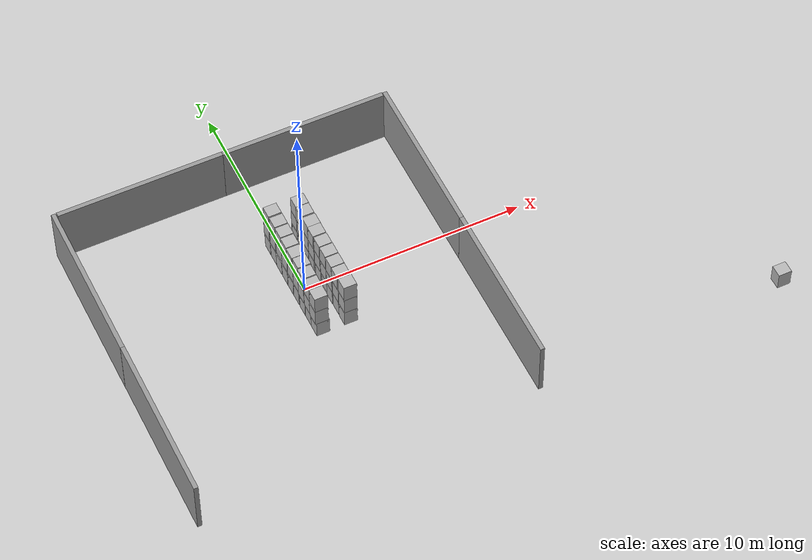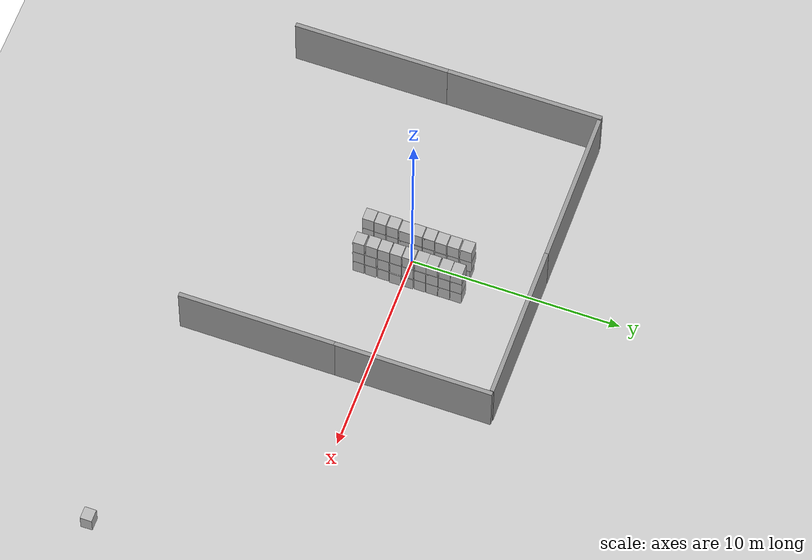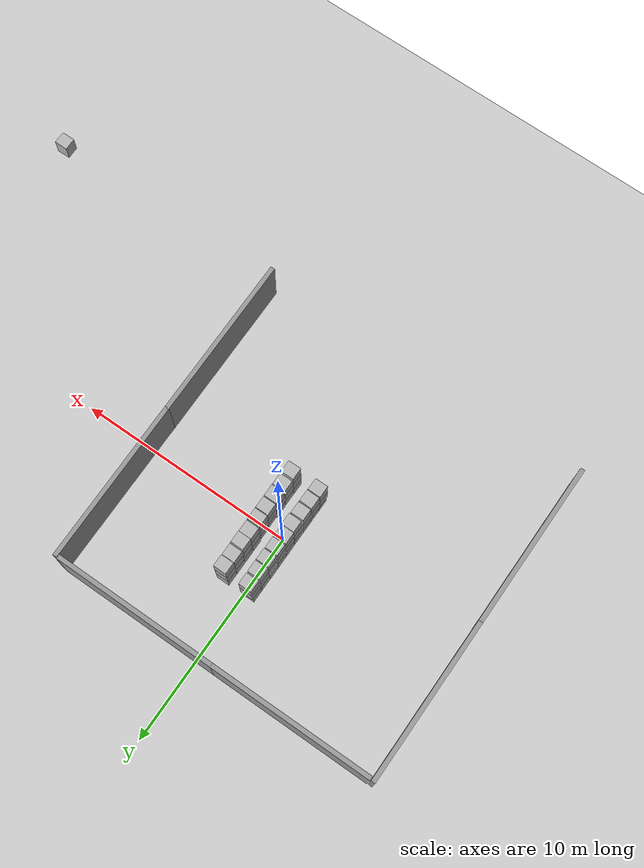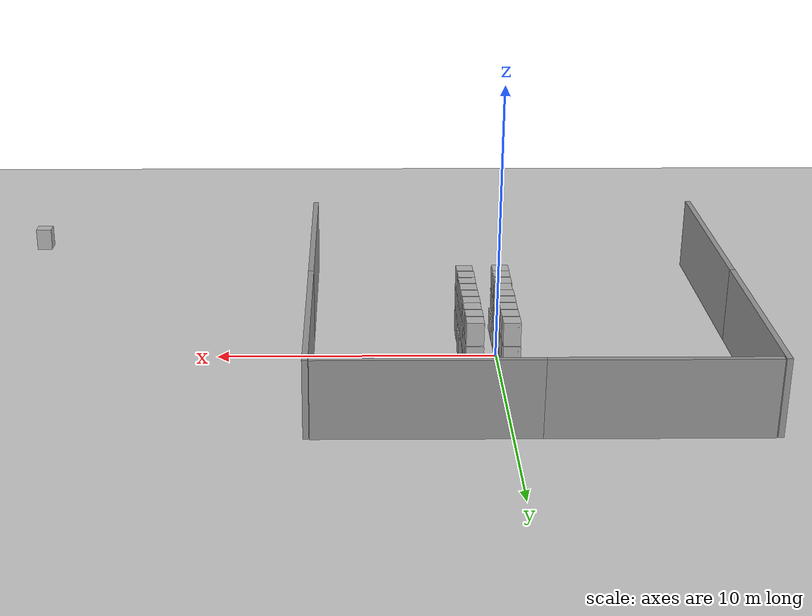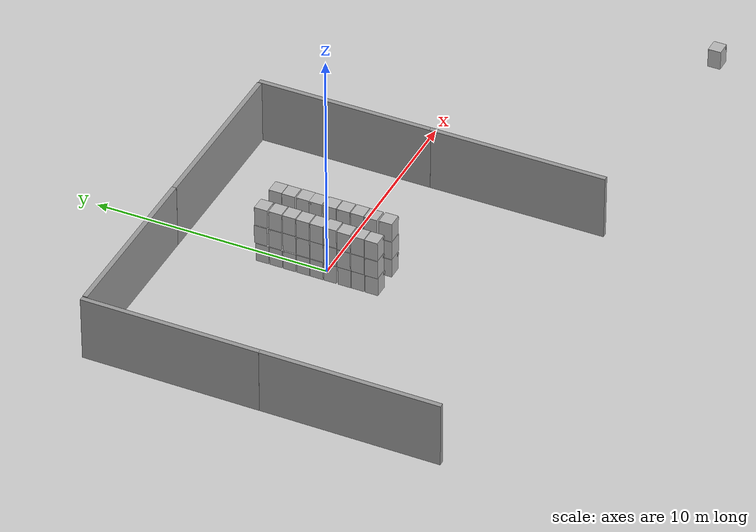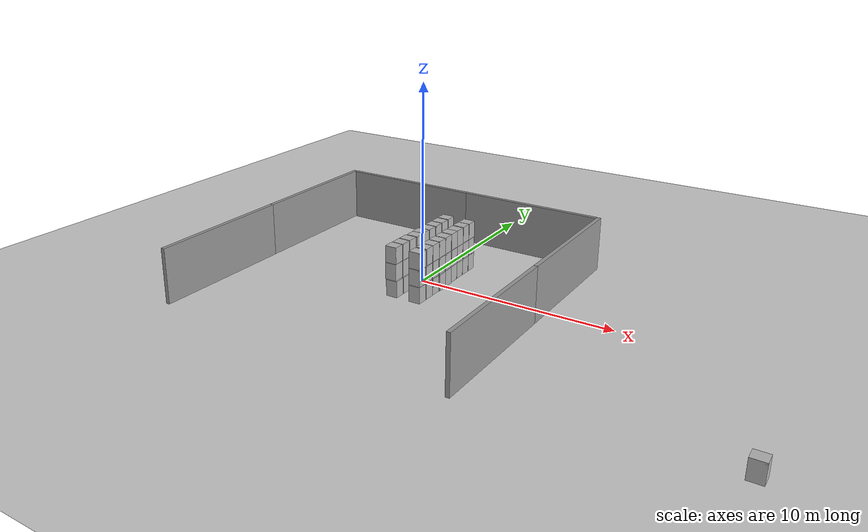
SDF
<sdf version="1.7">
 <world name="default">
  <light name="sun" type="directional">
   <pose>0 0 10 0 -0 0</pose>
   <diffuse>0.8 0.8 0.8 1</diffuse>
   <specular>0.2 0.2 0.2 1</specular>
   <attenuation>
    <range>1000</range>
    <constant>0.9</constant>
    <linear>0.01</linear>
    <quadratic>0.001</quadratic>
   </attenuation>
   <direction>-0.5 0.1 -0.9</direction>
   <spot><inner_angle>0</inner_angle><outer_angle>0</outer_angle><falloff>0</falloff></spot>
  </light>
  <model name="ground_plane">
   <static>1</static>
   <link name="link">
    <collision name="collision">
     <geometry><plane><normal>0 0 1</normal><size>100 100</size></plane></geometry>
     <surface>
      <contact><collide_bitmask>65535</collide_bitmask></contact>
      <friction><ode><mu>100</mu><mu2>50</mu2></ode></friction>
     </surface>
    </collision>
    <visual name="visual">
     <cast_shadows>0</cast_shadows>
     <geometry><plane><normal>0 0 1</normal><size>100 100</size></plane></geometry>
     <material>
      <script><uri>file://media/materials/scripts/gazebo.material</uri><name>Gazebo/Grey</name></script>
     </material>
    </visual>
   </link>
  </model>
  <gravity>0 0 -9.8</gravity>
  <magnetic_field>6e-06 2.3e-05 -4.2e-05</magnetic_field>
  <atmosphere type="adiabatic"/>
  <physics type="ode">
   <max_step_size>0.001</max_step_size>
   <real_time_factor>1</real_time_factor>
   <real_time_update_rate>1000</real_time_update_rate>
  </physics>
  <scene><ambient>0.4 0.4 0.4 1</ambient><background>0.7 0.7 0.7 1</background><shadows>1</shadows></scene>
  <audio><device>default</device></audio>
  <spherical_coordinates>
   <surface_model>EARTH_WGS84</surface_model>
   <latitude_deg>0</latitude_deg>
   <longitude_deg>0</longitude_deg>
   <elevation>0</elevation>
   <heading_deg>0</heading_deg>
  </spherical_coordinates>
  <model name="Arcelik Washing Machine">
   <static>1</static>
   <link name="link">
    <collision name="collision">
     <geometry>
      <mesh>
       <uri>file://src/cloudy/robolaunch_cloudy_simulator/worlds/arcelik_warehouse/washing_machine.dae</uri>
      </mesh>
     </geometry>
    </collision>
    <visual name="visual">
     <geometry>
      <mesh>
       <uri>file://src/cloudy/robolaunch_cloudy_simulator/worlds/arcelik_warehouse/washing_machine.dae</uri>
      </mesh>
     </geometry>
    </visual>
   </link>
   <pose>1.05126 -1.53559 0 0 -0 0</pose>
  </model>
  <model name="Arcelik Washing Machine_0">
   <static>1</static>
   <link name="link">
    <collision name="collision">
     <geometry>
      <mesh>
       <uri>file://src/cloudy/robolaunch_cloudy_simulator/worlds/arcelik_warehouse/washing_machine.dae</uri>
      </mesh>
     </geometry>
    </collision>
    <visual name="visual">
     <geometry>
      <mesh>
       <uri>file://src/cloudy/robolaunch_cloudy_simulator/worlds/arcelik_warehouse/washing_machine.dae</uri>
      </mesh>
     </geometry>
    </visual>
   </link>
   <pose>1.04174 -0.933475 0 0 -0 0</pose>
  </model>
  <model name="Arcelik Washing Machine_0_clone">
   <static>1</static>
   <link name="link">
    <collision name="collision">
     <geometry>
      <mesh>
       <uri>file://src/cloudy/robolaunch_cloudy_simulator/worlds/arcelik_warehouse/washing_machine.dae</uri>
      </mesh>
     </geometry>
    </collision>
    <visual name="visual">
     <geometry>
      <mesh>
       <uri>file://src/cloudy/robolaunch_cloudy_simulator/worlds/arcelik_warehouse/washing_machine.dae</uri>
      </mesh>
     </geometry>
    </visual>
   </link>
   <pose>1.07736 -0.342189 0 0 -0 0</pose>
  </model>
  <model name="Arcelik Washing Machine_0_clone_clone">
   <static>1</static>
   <link name="link">
    <collision name="collision">
     <geometry>
      <mesh>
       <uri>file://src/cloudy/robolaunch_cloudy_simulator/worlds/arcelik_warehouse/washing_machine.dae</uri>
      </mesh>
     </geometry>
    </collision>
    <visual name="visual">
     <geometry>
      <mesh>
       <uri>file://src/cloudy/robolaunch_cloudy_simulator/worlds/arcelik_warehouse/washing_machine.dae</uri>
      </mesh>
     </geometry>
    </visual>
   </link>
   <pose>1.05767 0.240598 0 0 -0 0</pose>
  </model>
  <model name="Arcelik Washing Machine_0_clone_clone_clone">
   <static>1</static>
   <link name="link">
    <collision name="collision">
     <geometry>
      <mesh>
       <uri>file://src/cloudy/robolaunch_cloudy_simulator/worlds/arcelik_warehouse/washing_machine.dae</uri>
      </mesh>
     </geometry>
    </collision>
    <visual name="visual">
     <geometry>
      <mesh>
       <uri>file://src/cloudy/robolaunch_cloudy_simulator/worlds/arcelik_warehouse/washing_machine.dae</uri>
      </mesh>
     </geometry>
    </visual>
   </link>
   <pose>1.02267 0.832197 0 0 -0 0</pose>
  </model>
  <model name="Arcelik Washing Machine_0_clone_clone_clone_0">
   <static>1</static>
   <link name="link">
    <collision name="collision">
     <geometry>
      <mesh>
       <uri>file://src/cloudy/robolaunch_cloudy_simulator/worlds/arcelik_warehouse/washing_machine.dae</uri>
      </mesh>
     </geometry>
    </collision>
    <visual name="visual">
     <geometry>
      <mesh>
       <uri>file://src/cloudy/robolaunch_cloudy_simulator/worlds/arcelik_warehouse/washing_machine.dae</uri>
      </mesh>
     </geometry>
    </visual>
   </link>
   <pose>1.01923 1.41064 0 0 -0 0</pose>
  </model>
  <model name="Arcelik Washing Machine_0_clone_clone_clone_1">
   <static>1</static>
   <link name="link">
    <collision name="collision">
     <geometry>
      <mesh>
       <uri>file://src/cloudy/robolaunch_cloudy_simulator/worlds/arcelik_warehouse/washing_machine.dae</uri>
      </mesh>
     </geometry>
    </collision>
    <visual name="visual">
     <geometry>
      <mesh>
       <uri>file://src/cloudy/robolaunch_cloudy_simulator/worlds/arcelik_warehouse/washing_machine.dae</uri>
      </mesh>
     </geometry>
    </visual>
   </link>
   <pose>1.01919 1.986 0 0 -0 0</pose>
  </model>
  <model name="Arcelik Washing Machine_0_clone_clone_clone_2">
   <static>1</static>
   <link name="link">
    <collision name="collision">
     <geometry>
      <mesh>
       <uri>file://src/cloudy/robolaunch_cloudy_simulator/worlds/arcelik_warehouse/washing_machine.dae</uri>
      </mesh>
     </geometry>
    </collision>
    <visual name="visual">
     <geometry>
      <mesh>
       <uri>file://src/cloudy/robolaunch_cloudy_simulator/worlds/arcelik_warehouse/washing_machine.dae</uri>
      </mesh>
     </geometry>
    </visual>
   </link>
   <pose>1.01915 2.56135 0 0 -0 0</pose>
  </model>
  <model name="Arcelik Washing Machine_clone">
   <static>1</static>
   <link name="link">
    <collision name="collision">
     <geometry>
      <mesh>
       <uri>file://src/cloudy/robolaunch_cloudy_simulator/worlds/arcelik_warehouse/washing_machine.dae</uri>
      </mesh>
     </geometry>
    </collision>
    <visual name="visual">
     <geometry>
      <mesh>
       <uri>file://src/cloudy/robolaunch_cloudy_simulator/worlds/arcelik_warehouse/washing_machine.dae</uri>
      </mesh>
     </geometry>
    </visual>
   </link>
   <pose>1.04548 -2.12786 0 0 -0 0</pose>
  </model>
  <model name="Arcelik Washing Machine_clone_clone">
   <static>1</static>
   <link name="link">
    <collision name="collision">
     <geometry>
      <mesh>
       <uri>file://src/cloudy/robolaunch_cloudy_simulator/worlds/arcelik_warehouse/washing_machine.dae</uri>
      </mesh>
     </geometry>
    </collision>
    <visual name="visual">
     <geometry>
      <mesh>
       <uri>file://src/cloudy/robolaunch_cloudy_simulator/worlds/arcelik_warehouse/washing_machine.dae</uri>
      </mesh>
     </geometry>
    </visual>
   </link>
   <pose>1.03434 -0.934238 0.861747 0 -0 0</pose>
  </model>
  <model name="Arcelik Washing Machine_clone_clone_0">
   <static>1</static>
   <link name="link">
    <collision name="collision">
     <geometry>
      <mesh>
       <uri>file://src/cloudy/robolaunch_cloudy_simulator/worlds/arcelik_warehouse/washing_machine.dae</uri>
      </mesh>
     </geometry>
    </collision>
    <visual name="visual">
     <geometry>
      <mesh>
       <uri>file://src/cloudy/robolaunch_cloudy_simulator/worlds/arcelik_warehouse/washing_machine.dae</uri>
      </mesh>
     </geometry>
    </visual>
   </link>
   <pose>1.04119 -0.341257 0.861747 0 -0 0</pose>
  </model>
  <model name="Arcelik Washing Machine_clone_clone_1">
   <static>1</static>
   <link name="link">
    <collision name="collision">
     <geometry>
      <mesh>
       <uri>file://src/cloudy/robolaunch_cloudy_simulator/worlds/arcelik_warehouse/washing_machine.dae</uri>
      </mesh>
     </geometry>
    </collision>
    <visual name="visual">
     <geometry>
      <mesh>
       <uri>file://src/cloudy/robolaunch_cloudy_simulator/worlds/arcelik_warehouse/washing_machine.dae</uri>
      </mesh>
     </geometry>
    </visual>
   </link>
   <pose>1.03196 0.236288 0.861747 0 -0 0</pose>
  </model>
  <model name="Arcelik Washing Machine_clone_clone_2">
   <static>1</static>
   <link name="link">
    <collision name="collision">
     <geometry>
      <mesh>
       <uri>file://src/cloudy/robolaunch_cloudy_simulator/worlds/arcelik_warehouse/washing_machine.dae</uri>
      </mesh>
     </geometry>
    </collision>
    <visual name="visual">
     <geometry>
      <mesh>
       <uri>file://src/cloudy/robolaunch_cloudy_simulator/worlds/arcelik_warehouse/washing_machine.dae</uri>
      </mesh>
     </geometry>
    </visual>
   </link>
   <pose>1.02964 0.831469 0.861747 0 -0 0</pose>
  </model>
  <model name="Arcelik Washing Machine_clone_clone_3">
   <static>1</static>
   <link name="link">
    <collision name="collision">
     <geometry>
      <mesh>
       <uri>file://src/cloudy/robolaunch_cloudy_simulator/worlds/arcelik_warehouse/washing_machine.dae</uri>
      </mesh>
     </geometry>
    </collision>
    <visual name="visual">
     <geometry>
      <mesh>
       <uri>file://src/cloudy/robolaunch_cloudy_simulator/worlds/arcelik_warehouse/washing_machine.dae</uri>
      </mesh>
     </geometry>
    </visual>
   </link>
   <pose>1.02328 1.40521 0.861747 0 -0 0</pose>
  </model>
  <model name="Arcelik Washing Machine_clone_clone_4">
   <static>1</static>
   <link name="link">
    <collision name="collision">
     <geometry>
      <mesh>
       <uri>file://src/cloudy/robolaunch_cloudy_simulator/worlds/arcelik_warehouse/washing_machine.dae</uri>
      </mesh>
     </geometry>
    </collision>
    <visual name="visual">
     <geometry>
      <mesh>
       <uri>file://src/cloudy/robolaunch_cloudy_simulator/worlds/arcelik_warehouse/washing_machine.dae</uri>
      </mesh>
     </geometry>
    </visual>
   </link>
   <pose>1.02783 1.9895 0.861747 0 -0 0</pose>
  </model>
  <model name="Arcelik Washing Machine_clone_clone_5">
   <static>1</static>
   <link name="link">
    <collision name="collision">
     <geometry>
      <mesh>
       <uri>file://src/cloudy/robolaunch_cloudy_simulator/worlds/arcelik_warehouse/washing_machine.dae</uri>
      </mesh>
     </geometry>
    </collision>
    <visual name="visual">
     <geometry>
      <mesh>
       <uri>file://src/cloudy/robolaunch_cloudy_simulator/worlds/arcelik_warehouse/washing_machine.dae</uri>
      </mesh>
     </geometry>
    </visual>
   </link>
   <pose>1.02011 2.56466 0.861747 0 -0 0</pose>
  </model>
  <model name="Arcelik Washing Machine_clone_clone_6">
   <static>1</static>
   <link name="link">
    <collision name="collision">
     <geometry>
      <mesh>
       <uri>file://src/cloudy/robolaunch_cloudy_simulator/worlds/arcelik_warehouse/washing_machine.dae</uri>
      </mesh>
     </geometry>
    </collision>
    <visual name="visual">
     <geometry>
      <mesh>
       <uri>file://src/cloudy/robolaunch_cloudy_simulator/worlds/arcelik_warehouse/washing_machine.dae</uri>
      </mesh>
     </geometry>
    </visual>
   </link>
   <pose>1.04421 -1.55298 0.861747 0 -0 0</pose>
  </model>
  <model name="Arcelik Washing Machine_clone_clone_6_clone">
   <static>1</static>
   <link name="link">
    <collision name="collision">
     <geometry>
      <mesh>
       <uri>file://src/cloudy/robolaunch_cloudy_simulator/worlds/arcelik_warehouse/washing_machine.dae</uri>
      </mesh>
     </geometry>
    </collision>
    <visual name="visual">
     <geometry>
      <mesh>
       <uri>file://src/cloudy/robolaunch_cloudy_simulator/worlds/arcelik_warehouse/washing_machine.dae</uri>
      </mesh>
     </geometry>
    </visual>
   </link>
   <pose>1.01349 1.99846 1.72398 0 -0 0</pose>
  </model>
  <model name="Arcelik Washing Machine_clone_clone_6_clone_0">
   <static>1</static>
   <link name="link">
    <collision name="collision">
     <geometry>
      <mesh>
       <uri>file://src/cloudy/robolaunch_cloudy_simulator/worlds/arcelik_warehouse/washing_machine.dae</uri>
      </mesh>
     </geometry>
    </collision>
    <visual name="visual">
     <geometry>
      <mesh>
       <uri>file://src/cloudy/robolaunch_cloudy_simulator/worlds/arcelik_warehouse/washing_machine.dae</uri>
      </mesh>
     </geometry>
    </visual>
   </link>
   <pose>1.02728 1.38783 1.72398 0 -0 0</pose>
  </model>
  <model name="Arcelik Washing Machine_clone_clone_6_clone_1">
   <static>1</static>
   <link name="link">
    <collision name="collision">
     <geometry>
      <mesh>
       <uri>file://src/cloudy/robolaunch_cloudy_simulator/worlds/arcelik_warehouse/washing_machine.dae</uri>
      </mesh>
     </geometry>
    </collision>
    <visual name="visual">
     <geometry>
      <mesh>
       <uri>file://src/cloudy/robolaunch_cloudy_simulator/worlds/arcelik_warehouse/washing_machine.dae</uri>
      </mesh>
     </geometry>
    </visual>
   </link>
   <pose>1.01913 0.841337 1.72398 0 -0 0</pose>
  </model>
  <model name="Arcelik Washing Machine_clone_clone_6_clone_2">
   <static>1</static>
   <link name="link">
    <collision name="collision">
     <geometry>
      <mesh>
       <uri>file://src/cloudy/robolaunch_cloudy_simulator/worlds/arcelik_warehouse/washing_machine.dae</uri>
      </mesh>
     </geometry>
    </collision>
    <visual name="visual">
     <geometry>
      <mesh>
       <uri>file://src/cloudy/robolaunch_cloudy_simulator/worlds/arcelik_warehouse/washing_machine.dae</uri>
      </mesh>
     </geometry>
    </visual>
   </link>
   <pose>1.03796 -0.926324 1.72398 0 -0 0</pose>
  </model>
  <model name="Arcelik Washing Machine_clone_clone_6_clone_3">
   <static>1</static>
   <link name="link">
    <collision name="collision">
     <geometry>
      <mesh>
       <uri>file://src/cloudy/robolaunch_cloudy_simulator/worlds/arcelik_warehouse/washing_machine.dae</uri>
      </mesh>
     </geometry>
    </collision>
    <visual name="visual">
     <geometry>
      <mesh>
       <uri>file://src/cloudy/robolaunch_cloudy_simulator/worlds/arcelik_warehouse/washing_machine.dae</uri>
      </mesh>
     </geometry>
    </visual>
   </link>
   <pose>1.02809 0.245173 1.72398 0 -0 0</pose>
  </model>
  <model name="Arcelik Washing Machine_clone_clone_6_clone_4">
   <static>1</static>
   <link name="link">
    <collision name="collision">
     <geometry>
      <mesh>
       <uri>file://src/cloudy/robolaunch_cloudy_simulator/worlds/arcelik_warehouse/washing_machine.dae</uri>
      </mesh>
     </geometry>
    </collision>
    <visual name="visual">
     <geometry>
      <mesh>
       <uri>file://src/cloudy/robolaunch_cloudy_simulator/worlds/arcelik_warehouse/washing_machine.dae</uri>
      </mesh>
     </geometry>
    </visual>
   </link>
   <pose>1.03416 -0.337578 1.72398 0 -0 0</pose>
  </model>
  <model name="Arcelik Washing Machine_clone_clone_6_clone_5">
   <static>1</static>
   <link name="link">
    <collision name="collision">
     <geometry>
      <mesh>
       <uri>file://src/cloudy/robolaunch_cloudy_simulator/worlds/arcelik_warehouse/washing_machine.dae</uri>
      </mesh>
     </geometry>
    </collision>
    <visual name="visual">
     <geometry>
      <mesh>
       <uri>file://src/cloudy/robolaunch_cloudy_simulator/worlds/arcelik_warehouse/washing_machine.dae</uri>
      </mesh>
     </geometry>
    </visual>
   </link>
   <pose>1.02366 2.56359 1.72398 0 -0 0</pose>
  </model>
  <model name="grey_wall">
   <static>1</static>
   <link name="link">
    <pose>0 0 1.4 0 -0 0</pose>
    <collision name="collision"><geometry><box><size>7.5 0.2 2.8</size></box></geometry></collision>
    <visual name="visual">
     <cast_shadows>0</cast_shadows>
     <geometry><box><size>7.5 0.2 2.8</size></box></geometry>
     <material>
      <script>
       <uri>model://grey_wall/materials/scripts</uri>
       <uri>model://grey_wall/materials/textures</uri>
       <name>vrc/grey_wall</name>
      </script>
     </material>
    </visual>
   </link>
   <pose>2.79189 6.08206 0 0 -0 0</pose>
  </model>
  <model name="grey_wall_clone">
   <static>1</static>
   <link name="link">
    <pose>0 0 1.4 0 -0 0</pose>
    <collision name="collision"><geometry><box><size>7.5 0.2 2.8</size></box></geometry></collision>
    <visual name="visual">
     <cast_shadows>0</cast_shadows>
     <geometry><box><size>7.5 0.2 2.8</size></box></geometry>
     <material>
      <script>
       <uri>model://grey_wall/materials/scripts</uri>
       <uri>model://grey_wall/materials/textures</uri>
       <name>vrc/grey_wall</name>
      </script>
     </material>
    </visual>
   </link>
   <pose>-4.70341 6.08409 0 0 -0 0</pose>
  </model>
  <model name="Arcelik Washing Machine_clone_clone_6_clone_6">
   <static>1</static>
   <link name="link">
    <collision name="collision">
     <geometry>
      <mesh>
       <uri>file://src/cloudy/robolaunch_cloudy_simulator/worlds/arcelik_warehouse/washing_machine.dae</uri>
      </mesh>
     </geometry>
    </collision>
    <visual name="visual">
     <geometry>
      <mesh>
       <uri>file://src/cloudy/robolaunch_cloudy_simulator/worlds/arcelik_warehouse/washing_machine.dae</uri>
      </mesh>
     </geometry>
    </visual>
   </link>
   <pose>1.05039 -2.13719 0.861747 0 -0 0</pose>
  </model>
  <model name="Arcelik Washing Machine_clone_clone_6_clone_2_clone">
   <static>1</static>
   <link name="link">
    <collision name="collision">
     <geometry>
      <mesh>
       <uri>file://src/cloudy/robolaunch_cloudy_simulator/worlds/arcelik_warehouse/washing_machine.dae</uri>
      </mesh>
     </geometry>
    </collision>
    <visual name="visual">
     <geometry>
      <mesh>
       <uri>file://src/cloudy/robolaunch_cloudy_simulator/worlds/arcelik_warehouse/washing_machine.dae</uri>
      </mesh>
     </geometry>
    </visual>
   </link>
   <pose>1.03302 -1.50292 1.72398 0 -0 0</pose>
  </model>
  <model name="Arcelik Washing Machine_clone_clone_6_clone_2_clone_0">
   <static>1</static>
   <link name="link">
    <collision name="collision">
     <geometry>
      <mesh>
       <uri>file://src/cloudy/robolaunch_cloudy_simulator/worlds/arcelik_warehouse/washing_machine.dae</uri>
      </mesh>
     </geometry>
    </collision>
    <visual name="visual">
     <geometry>
      <mesh>
       <uri>file://src/cloudy/robolaunch_cloudy_simulator/worlds/arcelik_warehouse/washing_machine.dae</uri>
      </mesh>
     </geometry>
    </visual>
   </link>
   <pose>1.0515 -2.1304 1.72398 0 -0 0</pose>
  </model>
  <model name="grey_wall_clone_0">
   <static>1</static>
   <link name="link">
    <pose>0 0 1.4 0 -0 0</pose>
    <collision name="collision"><geometry><box><size>7.5 0.2 2.8</size></box></geometry></collision>
    <visual name="visual">
     <cast_shadows>0</cast_shadows>
     <geometry><box><size>7.5 0.2 2.8</size></box></geometry>
     <material>
      <script>
       <uri>model://grey_wall/materials/scripts</uri>
       <uri>model://grey_wall/materials/textures</uri>
       <name>vrc/grey_wall</name>
      </script>
     </material>
    </visual>
   </link>
   <pose>-8.59866 2.41211 -0 0 -0 1.57</pose>
  </model>
  <model name="grey_wall_clone_0_clone">
   <static>1</static>
   <link name="link">
    <pose>0 0 1.4 0 -0 0</pose>
    <collision name="collision"><geometry><box><size>7.5 0.2 2.8</size></box></geometry></collision>
    <visual name="visual">
     <cast_shadows>0</cast_shadows>
     <geometry><box><size>7.5 0.2 2.8</size></box></geometry>
     <material>
      <script>
       <uri>model://grey_wall/materials/scripts</uri>
       <uri>model://grey_wall/materials/textures</uri>
       <name>vrc/grey_wall</name>
      </script>
     </material>
    </visual>
   </link>
   <pose>-8.60092 -5.08111 0 0 -0 1.57</pose>
  </model>
  <model name="grey_wall_clone_0_clone_clone">
   <static>1</static>
   <link name="link">
    <pose>0 0 1.4 0 -0 0</pose>
    <collision name="collision"><geometry><box><size>7.5 0.2 2.8</size></box></geometry></collision>
    <visual name="visual">
     <cast_shadows>0</cast_shadows>
     <geometry><box><size>7.5 0.2 2.8</size></box></geometry>
     <material>
      <script>
       <uri>model://grey_wall/materials/scripts</uri>
       <uri>model://grey_wall/materials/textures</uri>
       <name>vrc/grey_wall</name>
      </script>
     </material>
    </visual>
   </link>
   <pose>6.65914 2.3992 0 0 -0 1.57</pose>
  </model>
  <model name="grey_wall_clone_0_clone_clone_clone">
   <static>1</static>
   <link name="link">
    <pose>0 0 1.4 0 -0 0</pose>
    <collision name="collision"><geometry><box><size>7.5 0.2 2.8</size></box></geometry></collision>
    <visual name="visual">
     <cast_shadows>0</cast_shadows>
     <geometry><box><size>7.5 0.2 2.8</size></box></geometry>
     <material>
      <script>
       <uri>model://grey_wall/materials/scripts</uri>
       <uri>model://grey_wall/materials/textures</uri>
       <name>vrc/grey_wall</name>
      </script>
     </material>
    </visual>
   </link>
   <pose>6.65444 -5.044 0 0 -0 1.57</pose>
  </model>
  <model name="Arcelik Washing Machine_clone_clone_6_clone_2_clone_0_clone">
   <static>1</static>
   <link name="link">
    <collision name="collision">
     <geometry>
      <mesh>
       <uri>file://src/cloudy/robolaunch_cloudy_simulator/worlds/arcelik_warehouse/washing_machine.dae</uri>
      </mesh>
     </geometry>
    </collision>
    <visual name="visual">
     <geometry>
      <mesh>
       <uri>file://src/cloudy/robolaunch_cloudy_simulator/worlds/arcelik_warehouse/washing_machine.dae</uri>
      </mesh>
     </geometry>
    </visual>
   </link>
   <pose>-0.268069 -2.13975 1.72398 0 -0 0</pose>
  </model>
  <model name="Arcelik Washing Machine_clone_clone_6_clone_2_clone_clone">
   <static>1</static>
   <link name="link">
    <collision name="collision">
     <geometry>
      <mesh>
       <uri>file://src/cloudy/robolaunch_cloudy_simulator/worlds/arcelik_warehouse/washing_machine.dae</uri>
      </mesh>
     </geometry>
    </collision>
    <visual name="visual">
     <geometry>
      <mesh>
       <uri>file://src/cloudy/robolaunch_cloudy_simulator/worlds/arcelik_warehouse/washing_machine.dae</uri>
      </mesh>
     </geometry>
    </visual>
   </link>
   <pose>-0.257191 -1.56001 1.72398 0 -0 0</pose>
  </model>
  <model name="Arcelik Washing Machine_clone_clone_6_clone_2_clone_1">
   <static>1</static>
   <link name="link">
    <collision name="collision">
     <geometry>
      <mesh>
       <uri>file://src/cloudy/robolaunch_cloudy_simulator/worlds/arcelik_warehouse/washing_machine.dae</uri>
      </mesh>
     </geometry>
    </collision>
    <visual name="visual">
     <geometry>
      <mesh>
       <uri>file://src/cloudy/robolaunch_cloudy_simulator/worlds/arcelik_warehouse/washing_machine.dae</uri>
      </mesh>
     </geometry>
    </visual>
   </link>
   <pose>-0.252031 -0.964882 1.72398 0 -0 0</pose>
  </model>
  <model name="Arcelik Washing Machine_clone_clone_7">
   <static>1</static>
   <link name="link">
    <collision name="collision">
     <geometry>
      <mesh>
       <uri>file://src/cloudy/robolaunch_cloudy_simulator/worlds/arcelik_warehouse/washing_machine.dae</uri>
      </mesh>
     </geometry>
    </collision>
    <visual name="visual">
     <geometry>
      <mesh>
       <uri>file://src/cloudy/robolaunch_cloudy_simulator/worlds/arcelik_warehouse/washing_machine.dae</uri>
      </mesh>
     </geometry>
    </visual>
   </link>
   <pose>-0.22957 -2.14342 0 0 -0 0</pose>
  </model>
  <model name="Arcelik Washing Machine_clone_0">
   <static>1</static>
   <link name="link">
    <collision name="collision">
     <geometry>
      <mesh>
       <uri>file://src/cloudy/robolaunch_cloudy_simulator/worlds/arcelik_warehouse/washing_machine.dae</uri>
      </mesh>
     </geometry>
    </collision>
    <visual name="visual">
     <geometry>
      <mesh>
       <uri>file://src/cloudy/robolaunch_cloudy_simulator/worlds/arcelik_warehouse/washing_machine.dae</uri>
      </mesh>
     </geometry>
    </visual>
   </link>
   <pose>-0.226088 -1.55774 0 0 -0 0</pose>
  </model>
  <model name="Arcelik Washing Machine_0_clone_0">
   <static>1</static>
   <link name="link">
    <collision name="collision">
     <geometry>
      <mesh>
       <uri>file://src/cloudy/robolaunch_cloudy_simulator/worlds/arcelik_warehouse/washing_machine.dae</uri>
      </mesh>
     </geometry>
    </collision>
    <visual name="visual">
     <geometry>
      <mesh>
       <uri>file://src/cloudy/robolaunch_cloudy_simulator/worlds/arcelik_warehouse/washing_machine.dae</uri>
      </mesh>
     </geometry>
    </visual>
   </link>
   <pose>-0.230548 -0.983315 0 0 -0 0</pose>
  </model>
  <model name="Arcelik Washing Machine_0_clone_clone_0">
   <static>1</static>
   <link name="link">
    <collision name="collision">
     <geometry>
      <mesh>
       <uri>file://src/cloudy/robolaunch_cloudy_simulator/worlds/arcelik_warehouse/washing_machine.dae</uri>
      </mesh>
     </geometry>
    </collision>
    <visual name="visual">
     <geometry>
      <mesh>
       <uri>file://src/cloudy/robolaunch_cloudy_simulator/worlds/arcelik_warehouse/washing_machine.dae</uri>
      </mesh>
     </geometry>
    </visual>
   </link>
   <pose>-0.229199 -0.367716 0 0 -0 0</pose>
  </model>
  <model name="Arcelik Washing Machine_0_clone_clone_clone_3">
   <static>1</static>
   <link name="link">
    <collision name="collision">
     <geometry>
      <mesh>
       <uri>file://src/cloudy/robolaunch_cloudy_simulator/worlds/arcelik_warehouse/washing_machine.dae</uri>
      </mesh>
     </geometry>
    </collision>
    <visual name="visual">
     <geometry>
      <mesh>
       <uri>file://src/cloudy/robolaunch_cloudy_simulator/worlds/arcelik_warehouse/washing_machine.dae</uri>
      </mesh>
     </geometry>
    </visual>
   </link>
   <pose>-0.232307 0.206032 0 0 -0 0</pose>
  </model>
  <model name="Arcelik Washing Machine_0_clone_clone_clone_clone">
   <static>1</static>
   <link name="link">
    <collision name="collision">
     <geometry>
      <mesh>
       <uri>file://src/cloudy/robolaunch_cloudy_simulator/worlds/arcelik_warehouse/washing_machine.dae</uri>
      </mesh>
     </geometry>
    </collision>
    <visual name="visual">
     <geometry>
      <mesh>
       <uri>file://src/cloudy/robolaunch_cloudy_simulator/worlds/arcelik_warehouse/washing_machine.dae</uri>
      </mesh>
     </geometry>
    </visual>
   </link>
   <pose>-0.233794 0.784217 0 0 -0 0</pose>
  </model>
  <model name="Arcelik Washing Machine_0_clone_clone_clone_0_clone">
   <static>1</static>
   <link name="link">
    <collision name="collision">
     <geometry>
      <mesh>
       <uri>file://src/cloudy/robolaunch_cloudy_simulator/worlds/arcelik_warehouse/washing_machine.dae</uri>
      </mesh>
     </geometry>
    </collision>
    <visual name="visual">
     <geometry>
      <mesh>
       <uri>file://src/cloudy/robolaunch_cloudy_simulator/worlds/arcelik_warehouse/washing_machine.dae</uri>
      </mesh>
     </geometry>
    </visual>
   </link>
   <pose>-0.234925 1.37187 0 0 -0 0</pose>
  </model>
  <model name="Arcelik Washing Machine_0_clone_clone_clone_1_clone">
   <static>1</static>
   <link name="link">
    <collision name="collision">
     <geometry>
      <mesh>
       <uri>file://src/cloudy/robolaunch_cloudy_simulator/worlds/arcelik_warehouse/washing_machine.dae</uri>
      </mesh>
     </geometry>
    </collision>
    <visual name="visual">
     <geometry>
      <mesh>
       <uri>file://src/cloudy/robolaunch_cloudy_simulator/worlds/arcelik_warehouse/washing_machine.dae</uri>
      </mesh>
     </geometry>
    </visual>
   </link>
   <pose>-0.229096 1.95115 0 0 -0 0</pose>
  </model>
  <model name="Arcelik Washing Machine_0_clone_clone_clone_2_clone">
   <static>1</static>
   <link name="link">
    <collision name="collision">
     <geometry>
      <mesh>
       <uri>file://src/cloudy/robolaunch_cloudy_simulator/worlds/arcelik_warehouse/washing_machine.dae</uri>
      </mesh>
     </geometry>
    </collision>
    <visual name="visual">
     <geometry>
      <mesh>
       <uri>file://src/cloudy/robolaunch_cloudy_simulator/worlds/arcelik_warehouse/washing_machine.dae</uri>
      </mesh>
     </geometry>
    </visual>
   </link>
   <pose>-0.230878 2.53759 0 0 -0 0</pose>
  </model>
  <model name="Arcelik Washing Machine_clone_clone_6_clone_6_clone">
   <static>1</static>
   <link name="link">
    <collision name="collision">
     <geometry>
      <mesh>
       <uri>file://src/cloudy/robolaunch_cloudy_simulator/worlds/arcelik_warehouse/washing_machine.dae</uri>
      </mesh>
     </geometry>
    </collision>
    <visual name="visual">
     <geometry>
      <mesh>
       <uri>file://src/cloudy/robolaunch_cloudy_simulator/worlds/arcelik_warehouse/washing_machine.dae</uri>
      </mesh>
     </geometry>
    </visual>
   </link>
   <pose>-0.258548 -0.963938 0.861747 0 -0 0</pose>
  </model>
  <model name="Arcelik Washing Machine_clone_clone_6_clone_6_clone_clone">
   <static>1</static>
   <link name="link">
    <collision name="collision">
     <geometry>
      <mesh>
       <uri>file://src/cloudy/robolaunch_cloudy_simulator/worlds/arcelik_warehouse/washing_machine.dae</uri>
      </mesh>
     </geometry>
    </collision>
    <visual name="visual">
     <geometry>
      <mesh>
       <uri>file://src/cloudy/robolaunch_cloudy_simulator/worlds/arcelik_warehouse/washing_machine.dae</uri>
      </mesh>
     </geometry>
    </visual>
   </link>
   <pose>17.8462 -8.81191 0.861747 0 -0 0</pose>
  </model>
  <model name="Arcelik Washing Machine_clone_clone_6_clone_6_clone_clone_0">
   <static>1</static>
   <link name="link">
    <collision name="collision">
     <geometry>
      <mesh>
       <uri>file://src/cloudy/robolaunch_cloudy_simulator/worlds/arcelik_warehouse/washing_machine.dae</uri>
      </mesh>
     </geometry>
    </collision>
    <visual name="visual">
     <geometry>
      <mesh>
       <uri>file://src/cloudy/robolaunch_cloudy_simulator/worlds/arcelik_warehouse/washing_machine.dae</uri>
      </mesh>
     </geometry>
    </visual>
   </link>
   <pose>-0.26262 -1.56038 0.861747 0 -0 0</pose>
  </model>
  <model name="Arcelik Washing Machine_clone_clone_6_clone_6_clone_clone_1">
   <static>1</static>
   <link name="link">
    <collision name="collision">
     <geometry>
      <mesh>
       <uri>file://src/cloudy/robolaunch_cloudy_simulator/worlds/arcelik_warehouse/washing_machine.dae</uri>
      </mesh>
     </geometry>
    </collision>
    <visual name="visual">
     <geometry>
      <mesh>
       <uri>file://src/cloudy/robolaunch_cloudy_simulator/worlds/arcelik_warehouse/washing_machine.dae</uri>
      </mesh>
     </geometry>
    </visual>
   </link>
   <pose>-0.277354 -2.14312 0.861747 0 -0 0</pose>
  </model>
  <model name="Arcelik Washing Machine_clone_clone_6_clone_6_clone_clone_2">
   <static>1</static>
   <link name="link">
    <collision name="collision">
     <geometry>
      <mesh>
       <uri>file://src/cloudy/robolaunch_cloudy_simulator/worlds/arcelik_warehouse/washing_machine.dae</uri>
      </mesh>
     </geometry>
    </collision>
    <visual name="visual">
     <geometry>
      <mesh>
       <uri>file://src/cloudy/robolaunch_cloudy_simulator/worlds/arcelik_warehouse/washing_machine.dae</uri>
      </mesh>
     </geometry>
    </visual>
   </link>
   <pose>-0.225542 -0.369873 0.861747 0 -0 0</pose>
  </model>
  <model name="Arcelik Washing Machine_clone_clone_6_clone_6_clone_clone_3">
   <static>1</static>
   <link name="link">
    <collision name="collision">
     <geometry>
      <mesh>
       <uri>file://src/cloudy/robolaunch_cloudy_simulator/worlds/arcelik_warehouse/washing_machine.dae</uri>
      </mesh>
     </geometry>
    </collision>
    <visual name="visual">
     <geometry>
      <mesh>
       <uri>file://src/cloudy/robolaunch_cloudy_simulator/worlds/arcelik_warehouse/washing_machine.dae</uri>
      </mesh>
     </geometry>
    </visual>
   </link>
   <pose>-0.218713 0.201677 0.861747 0 -0 0</pose>
  </model>
  <model name="Arcelik Washing Machine_clone_clone_6_clone_6_clone_clone_3_clone">
   <static>1</static>
   <link name="link">
    <collision name="collision">
     <geometry>
      <mesh>
       <uri>file://src/cloudy/robolaunch_cloudy_simulator/worlds/arcelik_warehouse/washing_machine.dae</uri>
      </mesh>
     </geometry>
    </collision>
    <visual name="visual">
     <geometry>
      <mesh>
       <uri>file://src/cloudy/robolaunch_cloudy_simulator/worlds/arcelik_warehouse/washing_machine.dae</uri>
      </mesh>
     </geometry>
    </visual>
   </link>
   <pose>-0.2227 0.787227 0.861747 0 -0 0</pose>
  </model>
  <model name="Arcelik Washing Machine_clone_clone_6_clone_6_clone_clone_3_clone_clone">
   <static>1</static>
   <link name="link">
    <collision name="collision">
     <geometry>
      <mesh>
       <uri>file://src/cloudy/robolaunch_cloudy_simulator/worlds/arcelik_warehouse/washing_machine.dae</uri>
      </mesh>
     </geometry>
    </collision>
    <visual name="visual">
     <geometry>
      <mesh>
       <uri>file://src/cloudy/robolaunch_cloudy_simulator/worlds/arcelik_warehouse/washing_machine.dae</uri>
      </mesh>
     </geometry>
    </visual>
   </link>
   <pose>-0.203201 1.38372 0.861747 0 -0 0</pose>
  </model>
  <model name="Arcelik Washing Machine_clone_clone_6_clone_6_clone_clone_3_clone_clone_0">
   <static>1</static>
   <link name="link">
    <collision name="collision">
     <geometry>
      <mesh>
       <uri>file://src/cloudy/robolaunch_cloudy_simulator/worlds/arcelik_warehouse/washing_machine.dae</uri>
      </mesh>
     </geometry>
    </collision>
    <visual name="visual">
     <geometry>
      <mesh>
       <uri>file://src/cloudy/robolaunch_cloudy_simulator/worlds/arcelik_warehouse/washing_machine.dae</uri>
      </mesh>
     </geometry>
    </visual>
   </link>
   <pose>-0.230669 2.59646 0.861747 0 -0 0</pose>
  </model>
  <model name="Arcelik Washing Machine_clone_clone_6_clone_6_clone_clone_3_clone_clone_1">
   <static>1</static>
   <link name="link">
    <collision name="collision">
     <geometry>
      <mesh>
       <uri>file://src/cloudy/robolaunch_cloudy_simulator/worlds/arcelik_warehouse/washing_machine.dae</uri>
      </mesh>
     </geometry>
    </collision>
    <visual name="visual">
     <geometry>
      <mesh>
       <uri>file://src/cloudy/robolaunch_cloudy_simulator/worlds/arcelik_warehouse/washing_machine.dae</uri>
      </mesh>
     </geometry>
    </visual>
   </link>
   <pose>-0.226229 1.98019 0.861747 0 -0 0</pose>
  </model>
  <model name="Arcelik Washing Machine_clone_clone_6_clone_4_clone">
   <static>1</static>
   <link name="link">
    <collision name="collision">
     <geometry>
      <mesh>
       <uri>file://src/cloudy/robolaunch_cloudy_simulator/worlds/arcelik_warehouse/washing_machine.dae</uri>
      </mesh>
     </geometry>
    </collision>
    <visual name="visual">
     <geometry>
      <mesh>
       <uri>file://src/cloudy/robolaunch_cloudy_simulator/worlds/arcelik_warehouse/washing_machine.dae</uri>
      </mesh>
     </geometry>
    </visual>
   </link>
   <pose>-0.216181 -0.363518 1.72398 0 -0 0</pose>
  </model>
  <model name="Arcelik Washing Machine_clone_clone_6_clone_3_clone">
   <static>1</static>
   <link name="link">
    <collision name="collision">
     <geometry>
      <mesh>
       <uri>file://src/cloudy/robolaunch_cloudy_simulator/worlds/arcelik_warehouse/washing_machine.dae</uri>
      </mesh>
     </geometry>
    </collision>
    <visual name="visual">
     <geometry>
      <mesh>
       <uri>file://src/cloudy/robolaunch_cloudy_simulator/worlds/arcelik_warehouse/washing_machine.dae</uri>
      </mesh>
     </geometry>
    </visual>
   </link>
   <pose>-0.236541 0.198711 1.72398 0 -0 0</pose>
  </model>
  <model name="Arcelik Washing Machine_clone_clone_6_clone_1_clone">
   <static>1</static>
   <link name="link">
    <collision name="collision">
     <geometry>
      <mesh>
       <uri>file://src/cloudy/robolaunch_cloudy_simulator/worlds/arcelik_warehouse/washing_machine.dae</uri>
      </mesh>
     </geometry>
    </collision>
    <visual name="visual">
     <geometry>
      <mesh>
       <uri>file://src/cloudy/robolaunch_cloudy_simulator/worlds/arcelik_warehouse/washing_machine.dae</uri>
      </mesh>
     </geometry>
    </visual>
   </link>
   <pose>-0.229193 0.789419 1.72398 0 -0 0</pose>
  </model>
  <model name="Arcelik Washing Machine_clone_clone_6_clone_1_clone_0">
   <static>1</static>
   <link name="link">
    <collision name="collision">
     <geometry>
      <mesh>
       <uri>file://src/cloudy/robolaunch_cloudy_simulator/worlds/arcelik_warehouse/washing_machine.dae</uri>
      </mesh>
     </geometry>
    </collision>
    <visual name="visual">
     <geometry>
      <mesh>
       <uri>file://src/cloudy/robolaunch_cloudy_simulator/worlds/arcelik_warehouse/washing_machine.dae</uri>
      </mesh>
     </geometry>
    </visual>
   </link>
   <pose>-0.214473 1.37978 1.72398 0 -0 0</pose>
  </model>
  <model name="Arcelik Washing Machine_clone_clone_6_clone_clone">
   <static>1</static>
   <link name="link">
    <collision name="collision">
     <geometry>
      <mesh>
       <uri>file://src/cloudy/robolaunch_cloudy_simulator/worlds/arcelik_warehouse/washing_machine.dae</uri>
      </mesh>
     </geometry>
    </collision>
    <visual name="visual">
     <geometry>
      <mesh>
       <uri>file://src/cloudy/robolaunch_cloudy_simulator/worlds/arcelik_warehouse/washing_machine.dae</uri>
      </mesh>
     </geometry>
    </visual>
   </link>
   <pose>-0.214505 1.96895 1.72398 0 -0 0</pose>
  </model>
  <model name="Arcelik Washing Machine_clone_clone_6_clone_5_clone">
   <static>1</static>
   <link name="link">
    <collision name="collision">
     <geometry>
      <mesh>
       <uri>file://src/cloudy/robolaunch_cloudy_simulator/worlds/arcelik_warehouse/washing_machine.dae</uri>
      </mesh>
     </geometry>
    </collision>
    <visual name="visual">
     <geometry>
      <mesh>
       <uri>file://src/cloudy/robolaunch_cloudy_simulator/worlds/arcelik_warehouse/washing_machine.dae</uri>
      </mesh>
     </geometry>
    </visual>
   </link>
   <pose>-0.216961 2.58436 1.72398 0 -0 0</pose>
  </model>
 </world>
</sdf>
